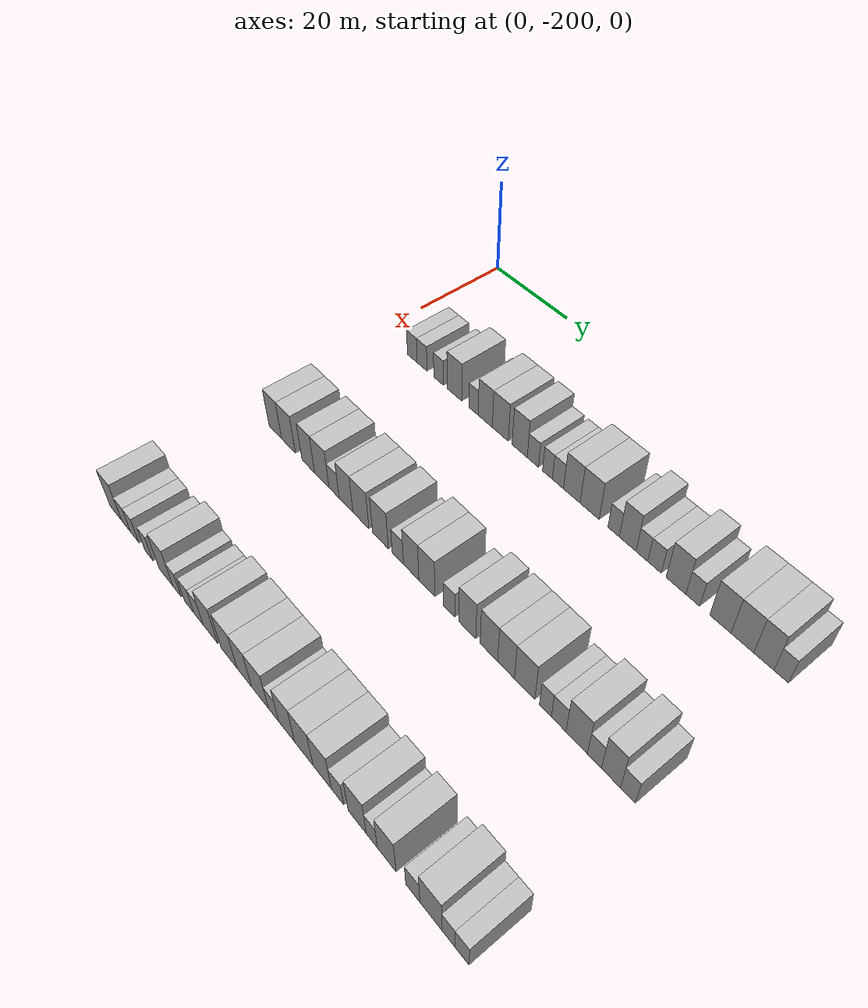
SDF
<sdf version="1.6">
 <world name="default">
  <model name="building_24">
   <static>1</static>
   <pose>25.0000 -189.9598 0 0.000000 0.000000 0.000000</pose>
   <link name="link">
    <pose>0 0 3.00 0 0 0</pose>
    <collision name="collision"><geometry><box><size>10.0000 2.9327 6.0000</size></box></geometry></collision>
    <visual name="visual">
     <cast_shadows>0</cast_shadows>
     <geometry><box><size>10.0000 2.9327 6.0000</size></box></geometry>
     <material>
      <script>
       <uri>model://HANNAS_wall/materials/scripts</uri>
       <uri>model://HANNAS_wall/materials/textures</uri>
       <name>vrc/HANNAS_wall</name>
      </script>
     </material>
    </visual>
   </link>
  </model>
  <model name="building_25">
   <static>1</static>
   <pose>25.0000 -187.0314 0 0.000000 0.000000 0.000000</pose>
   <link name="link">
    <pose>0 0 3.00 0 0 0</pose>
    <collision name="collision"><geometry><box><size>10.0000 2.9241 6.0000</size></box></geometry></collision>
    <visual name="visual">
     <cast_shadows>0</cast_shadows>
     <geometry><box><size>10.0000 2.9241 6.0000</size></box></geometry>
     <material>
      <script>
       <uri>model://HANNAS_wall/materials/scripts</uri>
       <uri>model://HANNAS_wall/materials/textures</uri>
       <name>vrc/HANNAS_wall</name>
      </script>
     </material>
    </visual>
   </link>
  </model>
  <model name="building_26">
   <static>1</static>
   <pose>25.0000 -182.1606 0 0.000000 0.000000 0.000000</pose>
   <link name="link">
    <pose>0 0 3.00 0 0 0</pose>
    <collision name="collision"><geometry><box><size>10.0000 2.8176 6.0000</size></box></geometry></collision>
    <visual name="visual">
     <cast_shadows>0</cast_shadows>
     <geometry><box><size>10.0000 2.8176 6.0000</size></box></geometry>
     <material>
      <script>
       <uri>model://HANNAS_wall/materials/scripts</uri>
       <uri>model://HANNAS_wall/materials/textures</uri>
       <name>vrc/HANNAS_wall</name>
      </script>
     </material>
    </visual>
   </link>
  </model>
  <model name="building_27">
   <static>1</static>
   <pose>25.0000 -177.6639 0 0.000000 0.000000 0.000000</pose>
   <link name="link">
    <pose>0 0 4.50 0 0 0</pose>
    <collision name="collision"><geometry><box><size>10.0000 4.1757 9.0000</size></box></geometry></collision>
    <visual name="visual">
     <cast_shadows>0</cast_shadows>
     <geometry><box><size>10.0000 4.1757 9.0000</size></box></geometry>
     <material>
      <script>
       <uri>model://HANNAS_wall/materials/scripts</uri>
       <uri>model://HANNAS_wall/materials/textures</uri>
       <name>vrc/HANNAS_wall</name>
      </script>
     </material>
    </visual>
   </link>
  </model>
  <model name="building_28">
   <static>1</static>
   <pose>25.0000 -172.3150 0 0.000000 0.000000 0.000000</pose>
   <link name="link">
    <pose>0 0 3.00 0 0 0</pose>
    <collision name="collision"><geometry><box><size>10.0000 2.5220 6.0000</size></box></geometry></collision>
    <visual name="visual">
     <cast_shadows>0</cast_shadows>
     <geometry><box><size>10.0000 2.5220 6.0000</size></box></geometry>
     <material>
      <script>
       <uri>model://HANNAS_wall/materials/scripts</uri>
       <uri>model://HANNAS_wall/materials/textures</uri>
       <name>vrc/HANNAS_wall</name>
      </script>
     </material>
    </visual>
   </link>
  </model>
  <model name="building_29">
   <static>1</static>
   <pose>25.0000 -169.1305 0 0.000000 0.000000 0.000000</pose>
   <link name="link">
    <pose>0 0 4.50 0 0 0</pose>
    <collision name="collision"><geometry><box><size>10.0000 3.8471 9.0000</size></box></geometry></collision>
    <visual name="visual">
     <cast_shadows>0</cast_shadows>
     <geometry><box><size>10.0000 3.8471 9.0000</size></box></geometry>
     <material>
      <script>
       <uri>model://HANNAS_wall/materials/scripts</uri>
       <uri>model://HANNAS_wall/materials/textures</uri>
       <name>vrc/HANNAS_wall</name>
      </script>
     </material>
    </visual>
   </link>
  </model>
  <model name="building_30">
   <static>1</static>
   <pose>25.0000 -165.1003 0 0.000000 0.000000 0.000000</pose>
   <link name="link">
    <pose>0 0 4.50 0 0 0</pose>
    <collision name="collision"><geometry><box><size>10.0000 4.2134 9.0000</size></box></geometry></collision>
    <visual name="visual">
     <cast_shadows>0</cast_shadows>
     <geometry><box><size>10.0000 4.2134 9.0000</size></box></geometry>
     <material>
      <script>
       <uri>model://HANNAS_wall/materials/scripts</uri>
       <uri>model://HANNAS_wall/materials/textures</uri>
       <name>vrc/HANNAS_wall</name>
      </script>
     </material>
    </visual>
   </link>
  </model>
  <model name="building_31">
   <static>1</static>
   <pose>25.0000 -160.0401 0 0.000000 0.000000 0.000000</pose>
   <link name="link">
    <pose>0 0 4.50 0 0 0</pose>
    <collision name="collision"><geometry><box><size>10.0000 3.9069 9.0000</size></box></geometry></collision>
    <visual name="visual">
     <cast_shadows>0</cast_shadows>
     <geometry><box><size>10.0000 3.9069 9.0000</size></box></geometry>
     <material>
      <script>
       <uri>model://HANNAS_wall/materials/scripts</uri>
       <uri>model://HANNAS_wall/materials/textures</uri>
       <name>vrc/HANNAS_wall</name>
      </script>
     </material>
    </visual>
   </link>
  </model>
  <model name="building_32">
   <static>1</static>
   <pose>25.0000 -156.6696 0 0.000000 0.000000 0.000000</pose>
   <link name="link">
    <pose>0 0 3.00 0 0 0</pose>
    <collision name="collision"><geometry><box><size>10.0000 2.8342 6.0000</size></box></geometry></collision>
    <visual name="visual">
     <cast_shadows>0</cast_shadows>
     <geometry><box><size>10.0000 2.8342 6.0000</size></box></geometry>
     <material>
      <script>
       <uri>model://HANNAS_wall/materials/scripts</uri>
       <uri>model://HANNAS_wall/materials/textures</uri>
       <name>vrc/HANNAS_wall</name>
      </script>
     </material>
    </visual>
   </link>
  </model>
  <model name="building_33">
   <static>1</static>
   <pose>25.0000 -153.0370 0 0.000000 0.000000 0.000000</pose>
   <link name="link">
    <pose>0 0 3.00 0 0 0</pose>
    <collision name="collision"><geometry><box><size>10.0000 2.4311 6.0000</size></box></geometry></collision>
    <visual name="visual">
     <cast_shadows>0</cast_shadows>
     <geometry><box><size>10.0000 2.4311 6.0000</size></box></geometry>
     <material>
      <script>
       <uri>model://HANNAS_wall/materials/scripts</uri>
       <uri>model://HANNAS_wall/materials/textures</uri>
       <name>vrc/HANNAS_wall</name>
      </script>
     </material>
    </visual>
   </link>
  </model>
  <model name="building_34">
   <static>1</static>
   <pose>25.0000 -150.4650 0 0.000000 0.000000 0.000000</pose>
   <link name="link">
    <pose>0 0 3.00 0 0 0</pose>
    <collision name="collision"><geometry><box><size>10.0000 2.7129 6.0000</size></box></geometry></collision>
    <visual name="visual">
     <cast_shadows>0</cast_shadows>
     <geometry><box><size>10.0000 2.7129 6.0000</size></box></geometry>
     <material>
      <script>
       <uri>model://HANNAS_wall/materials/scripts</uri>
       <uri>model://HANNAS_wall/materials/textures</uri>
       <name>vrc/HANNAS_wall</name>
      </script>
     </material>
    </visual>
   </link>
  </model>
  <model name="building_35">
   <static>1</static>
   <pose>25.0000 -147.1252 0 0.000000 0.000000 0.000000</pose>
   <link name="link">
    <pose>0 0 4.50 0 0 0</pose>
    <collision name="collision"><geometry><box><size>10.0000 3.9666 9.0000</size></box></geometry></collision>
    <visual name="visual">
     <cast_shadows>0</cast_shadows>
     <geometry><box><size>10.0000 3.9666 9.0000</size></box></geometry>
     <material>
      <script>
       <uri>model://HANNAS_wall/materials/scripts</uri>
       <uri>model://HANNAS_wall/materials/textures</uri>
       <name>vrc/HANNAS_wall</name>
      </script>
     </material>
    </visual>
   </link>
  </model>
  <model name="building_36">
   <static>1</static>
   <pose>25.0000 -142.9128 0 0.000000 0.000000 0.000000</pose>
   <link name="link">
    <pose>0 0 4.50 0 0 0</pose>
    <collision name="collision"><geometry><box><size>10.0000 4.4582 9.0000</size></box></geometry></collision>
    <visual name="visual">
     <cast_shadows>0</cast_shadows>
     <geometry><box><size>10.0000 4.4582 9.0000</size></box></geometry>
     <material>
      <script>
       <uri>model://HANNAS_wall/materials/scripts</uri>
       <uri>model://HANNAS_wall/materials/textures</uri>
       <name>vrc/HANNAS_wall</name>
      </script>
     </material>
    </visual>
   </link>
  </model>
  <model name="building_37">
   <static>1</static>
   <pose>25.0000 -137.3986 0 0.000000 0.000000 0.000000</pose>
   <link name="link">
    <pose>0 0 3.00 0 0 0</pose>
    <collision name="collision"><geometry><box><size>10.0000 2.5701 6.0000</size></box></geometry></collision>
    <visual name="visual">
     <cast_shadows>0</cast_shadows>
     <geometry><box><size>10.0000 2.5701 6.0000</size></box></geometry>
     <material>
      <script>
       <uri>model://HANNAS_wall/materials/scripts</uri>
       <uri>model://HANNAS_wall/materials/textures</uri>
       <name>vrc/HANNAS_wall</name>
      </script>
     </material>
    </visual>
   </link>
  </model>
  <model name="building_38">
   <static>1</static>
   <pose>25.0000 -134.2662 0 0.000000 0.000000 0.000000</pose>
   <link name="link">
    <pose>0 0 4.50 0 0 0</pose>
    <collision name="collision"><geometry><box><size>10.0000 3.6948 9.0000</size></box></geometry></collision>
    <visual name="visual">
     <cast_shadows>0</cast_shadows>
     <geometry><box><size>10.0000 3.6948 9.0000</size></box></geometry>
     <material>
      <script>
       <uri>model://HANNAS_wall/materials/scripts</uri>
       <uri>model://HANNAS_wall/materials/textures</uri>
       <name>vrc/HANNAS_wall</name>
      </script>
     </material>
    </visual>
   </link>
  </model>
  <model name="building_39">
   <static>1</static>
   <pose>25.0000 -131.1527 0 0.000000 0.000000 0.000000</pose>
   <link name="link">
    <pose>0 0 3.00 0 0 0</pose>
    <collision name="collision"><geometry><box><size>10.0000 2.5321 6.0000</size></box></geometry></collision>
    <visual name="visual">
     <cast_shadows>0</cast_shadows>
     <geometry><box><size>10.0000 2.5321 6.0000</size></box></geometry>
     <material>
      <script>
       <uri>model://HANNAS_wall/materials/scripts</uri>
       <uri>model://HANNAS_wall/materials/textures</uri>
       <name>vrc/HANNAS_wall</name>
      </script>
     </material>
    </visual>
   </link>
  </model>
  <model name="building_40">
   <static>1</static>
   <pose>25.0000 -128.4252 0 0.000000 0.000000 0.000000</pose>
   <link name="link">
    <pose>0 0 3.00 0 0 0</pose>
    <collision name="collision"><geometry><box><size>10.0000 2.9230 6.0000</size></box></geometry></collision>
    <visual name="visual">
     <cast_shadows>0</cast_shadows>
     <geometry><box><size>10.0000 2.9230 6.0000</size></box></geometry>
     <material>
      <script>
       <uri>model://HANNAS_wall/materials/scripts</uri>
       <uri>model://HANNAS_wall/materials/textures</uri>
       <name>vrc/HANNAS_wall</name>
      </script>
     </material>
    </visual>
   </link>
  </model>
  <model name="building_41">
   <static>1</static>
   <pose>25.0000 -123.9080 0 0.000000 0.000000 0.000000</pose>
   <link name="link">
    <pose>0 0 4.50 0 0 0</pose>
    <collision name="collision"><geometry><box><size>10.0000 4.1114 9.0000</size></box></geometry></collision>
    <visual name="visual">
     <cast_shadows>0</cast_shadows>
     <geometry><box><size>10.0000 4.1114 9.0000</size></box></geometry>
     <material>
      <script>
       <uri>model://HANNAS_wall/materials/scripts</uri>
       <uri>model://HANNAS_wall/materials/textures</uri>
       <name>vrc/HANNAS_wall</name>
      </script>
     </material>
    </visual>
   </link>
  </model>
  <model name="building_42">
   <static>1</static>
   <pose>25.0000 -120.4333 0 0.000000 0.000000 0.000000</pose>
   <link name="link">
    <pose>0 0 3.00 0 0 0</pose>
    <collision name="collision"><geometry><box><size>10.0000 2.8381 6.0000</size></box></geometry></collision>
    <visual name="visual">
     <cast_shadows>0</cast_shadows>
     <geometry><box><size>10.0000 2.8381 6.0000</size></box></geometry>
     <material>
      <script>
       <uri>model://HANNAS_wall/materials/scripts</uri>
       <uri>model://HANNAS_wall/materials/textures</uri>
       <name>vrc/HANNAS_wall</name>
      </script>
     </material>
    </visual>
   </link>
  </model>
  <model name="building_43">
   <static>1</static>
   <pose>25.0000 -114.9299 0 0.000000 0.000000 0.000000</pose>
   <link name="link">
    <pose>0 0 4.50 0 0 0</pose>
    <collision name="collision"><geometry><box><size>10.0000 4.1688 9.0000</size></box></geometry></collision>
    <visual name="visual">
     <cast_shadows>0</cast_shadows>
     <geometry><box><size>10.0000 4.1688 9.0000</size></box></geometry>
     <material>
      <script>
       <uri>model://HANNAS_wall/materials/scripts</uri>
       <uri>model://HANNAS_wall/materials/textures</uri>
       <name>vrc/HANNAS_wall</name>
      </script>
     </material>
    </visual>
   </link>
  </model>
  <model name="building_44">
   <static>1</static>
   <pose>25.0000 -110.6669 0 0.000000 0.000000 0.000000</pose>
   <link name="link">
    <pose>0 0 4.50 0 0 0</pose>
    <collision name="collision"><geometry><box><size>10.0000 4.3571 9.0000</size></box></geometry></collision>
    <visual name="visual">
     <cast_shadows>0</cast_shadows>
     <geometry><box><size>10.0000 4.3571 9.0000</size></box></geometry>
     <material>
      <script>
       <uri>model://HANNAS_wall/materials/scripts</uri>
       <uri>model://HANNAS_wall/materials/textures</uri>
       <name>vrc/HANNAS_wall</name>
      </script>
     </material>
    </visual>
   </link>
  </model>
  <model name="building_45">
   <static>1</static>
   <pose>25.0000 -106.6091 0 0.000000 0.000000 0.000000</pose>
   <link name="link">
    <pose>0 0 4.50 0 0 0</pose>
    <collision name="collision"><geometry><box><size>10.0000 3.7584 9.0000</size></box></geometry></collision>
    <visual name="visual">
     <cast_shadows>0</cast_shadows>
     <geometry><box><size>10.0000 3.7584 9.0000</size></box></geometry>
     <material>
      <script>
       <uri>model://HANNAS_wall/materials/scripts</uri>
       <uri>model://HANNAS_wall/materials/textures</uri>
       <name>vrc/HANNAS_wall</name>
      </script>
     </material>
    </visual>
   </link>
  </model>
  <model name="building_46">
   <static>1</static>
   <pose>25.0000 -103.3886 0 0.000000 0.000000 0.000000</pose>
   <link name="link">
    <pose>0 0 3.00 0 0 0</pose>
    <collision name="collision"><geometry><box><size>10.0000 2.6826 6.0000</size></box></geometry></collision>
    <visual name="visual">
     <cast_shadows>0</cast_shadows>
     <geometry><box><size>10.0000 2.6826 6.0000</size></box></geometry>
     <material>
      <script>
       <uri>model://HANNAS_wall/materials/scripts</uri>
       <uri>model://HANNAS_wall/materials/textures</uri>
       <name>vrc/HANNAS_wall</name>
      </script>
     </material>
    </visual>
   </link>
  </model>
  <model name="building_172">
   <static>1</static>
   <pose>55.0000 -190.2569 0 0.000000 0.000000 0.000000</pose>
   <link name="link">
    <pose>0 0 4.50 0 0 0</pose>
    <collision name="collision"><geometry><box><size>10.0000 3.9607 9.0000</size></box></geometry></collision>
    <visual name="visual">
     <cast_shadows>0</cast_shadows>
     <geometry><box><size>10.0000 3.9607 9.0000</size></box></geometry>
     <material>
      <script>
       <uri>model://HANNAS_wall/materials/scripts</uri>
       <uri>model://HANNAS_wall/materials/textures</uri>
       <name>vrc/HANNAS_wall</name>
      </script>
     </material>
    </visual>
   </link>
  </model>
  <model name="building_173">
   <static>1</static>
   <pose>55.0000 -186.1479 0 0.000000 0.000000 0.000000</pose>
   <link name="link">
    <pose>0 0 4.50 0 0 0</pose>
    <collision name="collision"><geometry><box><size>10.0000 4.2573 9.0000</size></box></geometry></collision>
    <visual name="visual">
     <cast_shadows>0</cast_shadows>
     <geometry><box><size>10.0000 4.2573 9.0000</size></box></geometry>
     <material>
      <script>
       <uri>model://HANNAS_wall/materials/scripts</uri>
       <uri>model://HANNAS_wall/materials/textures</uri>
       <name>vrc/HANNAS_wall</name>
      </script>
     </material>
    </visual>
   </link>
  </model>
  <model name="building_174">
   <static>1</static>
   <pose>55.0000 -180.1241 0 0.000000 0.000000 0.000000</pose>
   <link name="link">
    <pose>0 0 4.50 0 0 0</pose>
    <collision name="collision"><geometry><box><size>10.0000 3.7902 9.0000</size></box></geometry></collision>
    <visual name="visual">
     <cast_shadows>0</cast_shadows>
     <geometry><box><size>10.0000 3.7902 9.0000</size></box></geometry>
     <material>
      <script>
       <uri>model://HANNAS_wall/materials/scripts</uri>
       <uri>model://HANNAS_wall/materials/textures</uri>
       <name>vrc/HANNAS_wall</name>
      </script>
     </material>
    </visual>
   </link>
  </model>
  <model name="building_175">
   <static>1</static>
   <pose>55.0000 -176.1196 0 0.000000 0.000000 0.000000</pose>
   <link name="link">
    <pose>0 0 4.50 0 0 0</pose>
    <collision name="collision"><geometry><box><size>10.0000 4.2188 9.0000</size></box></geometry></collision>
    <visual name="visual">
     <cast_shadows>0</cast_shadows>
     <geometry><box><size>10.0000 4.2188 9.0000</size></box></geometry>
     <material>
      <script>
       <uri>model://HANNAS_wall/materials/scripts</uri>
       <uri>model://HANNAS_wall/materials/textures</uri>
       <name>vrc/HANNAS_wall</name>
      </script>
     </material>
    </visual>
   </link>
  </model>
  <model name="building_176">
   <static>1</static>
   <pose>55.0000 -172.5550 0 0.000000 0.000000 0.000000</pose>
   <link name="link">
    <pose>0 0 3.00 0 0 0</pose>
    <collision name="collision"><geometry><box><size>10.0000 2.9104 6.0000</size></box></geometry></collision>
    <visual name="visual">
     <cast_shadows>0</cast_shadows>
     <geometry><box><size>10.0000 2.9104 6.0000</size></box></geometry>
     <material>
      <script>
       <uri>model://HANNAS_wall/materials/scripts</uri>
       <uri>model://HANNAS_wall/materials/textures</uri>
       <name>vrc/HANNAS_wall</name>
      </script>
     </material>
    </visual>
   </link>
  </model>
  <model name="building_177">
   <static>1</static>
   <pose>55.0000 -169.1664 0 0.000000 0.000000 0.000000</pose>
   <link name="link">
    <pose>0 0 4.50 0 0 0</pose>
    <collision name="collision"><geometry><box><size>10.0000 3.8669 9.0000</size></box></geometry></collision>
    <visual name="visual">
     <cast_shadows>0</cast_shadows>
     <geometry><box><size>10.0000 3.8669 9.0000</size></box></geometry>
     <material>
      <script>
       <uri>model://HANNAS_wall/materials/scripts</uri>
       <uri>model://HANNAS_wall/materials/textures</uri>
       <name>vrc/HANNAS_wall</name>
      </script>
     </material>
    </visual>
   </link>
  </model>
  <model name="building_178">
   <static>1</static>
   <pose>55.0000 -165.0434 0 0.000000 0.000000 0.000000</pose>
   <link name="link">
    <pose>0 0 4.50 0 0 0</pose>
    <collision name="collision"><geometry><box><size>10.0000 4.3790 9.0000</size></box></geometry></collision>
    <visual name="visual">
     <cast_shadows>0</cast_shadows>
     <geometry><box><size>10.0000 4.3790 9.0000</size></box></geometry>
     <material>
      <script>
       <uri>model://HANNAS_wall/materials/scripts</uri>
       <uri>model://HANNAS_wall/materials/textures</uri>
       <name>vrc/HANNAS_wall</name>
      </script>
     </material>
    </visual>
   </link>
  </model>
  <model name="building_179">
   <static>1</static>
   <pose>55.0000 -159.7530 0 0.000000 0.000000 0.000000</pose>
   <link name="link">
    <pose>0 0 4.50 0 0 0</pose>
    <collision name="collision"><geometry><box><size>10.0000 4.2018 9.0000</size></box></geometry></collision>
    <visual name="visual">
     <cast_shadows>0</cast_shadows>
     <geometry><box><size>10.0000 4.2018 9.0000</size></box></geometry>
     <material>
      <script>
       <uri>model://HANNAS_wall/materials/scripts</uri>
       <uri>model://HANNAS_wall/materials/textures</uri>
       <name>vrc/HANNAS_wall</name>
      </script>
     </material>
    </visual>
   </link>
  </model>
  <model name="building_180">
   <static>1</static>
   <pose>55.0000 -155.1799 0 0.000000 0.000000 0.000000</pose>
   <link name="link">
    <pose>0 0 3.00 0 0 0</pose>
    <collision name="collision"><geometry><box><size>10.0000 2.9445 6.0000</size></box></geometry></collision>
    <visual name="visual">
     <cast_shadows>0</cast_shadows>
     <geometry><box><size>10.0000 2.9445 6.0000</size></box></geometry>
     <material>
      <script>
       <uri>model://HANNAS_wall/materials/scripts</uri>
       <uri>model://HANNAS_wall/materials/textures</uri>
       <name>vrc/HANNAS_wall</name>
      </script>
     </material>
    </visual>
   </link>
  </model>
  <model name="building_181">
   <static>1</static>
   <pose>55.0000 -151.7801 0 0.000000 0.000000 0.000000</pose>
   <link name="link">
    <pose>0 0 4.50 0 0 0</pose>
    <collision name="collision"><geometry><box><size>10.0000 3.8550 9.0000</size></box></geometry></collision>
    <visual name="visual">
     <cast_shadows>0</cast_shadows>
     <geometry><box><size>10.0000 3.8550 9.0000</size></box></geometry>
     <material>
      <script>
       <uri>model://HANNAS_wall/materials/scripts</uri>
       <uri>model://HANNAS_wall/materials/textures</uri>
       <name>vrc/HANNAS_wall</name>
      </script>
     </material>
    </visual>
   </link>
  </model>
  <model name="building_182">
   <static>1</static>
   <pose>55.0000 -147.8596 0 0.000000 0.000000 0.000000</pose>
   <link name="link">
    <pose>0 0 4.50 0 0 0</pose>
    <collision name="collision"><geometry><box><size>10.0000 3.9860 9.0000</size></box></geometry></collision>
    <visual name="visual">
     <cast_shadows>0</cast_shadows>
     <geometry><box><size>10.0000 3.9860 9.0000</size></box></geometry>
     <material>
      <script>
       <uri>model://HANNAS_wall/materials/scripts</uri>
       <uri>model://HANNAS_wall/materials/textures</uri>
       <name>vrc/HANNAS_wall</name>
      </script>
     </material>
    </visual>
   </link>
  </model>
  <model name="building_183">
   <static>1</static>
   <pose>55.0000 -142.4918 0 0.000000 0.000000 0.000000</pose>
   <link name="link">
    <pose>0 0 3.00 0 0 0</pose>
    <collision name="collision"><geometry><box><size>10.0000 2.7497 6.0000</size></box></geometry></collision>
    <visual name="visual">
     <cast_shadows>0</cast_shadows>
     <geometry><box><size>10.0000 2.7497 6.0000</size></box></geometry>
     <material>
      <script>
       <uri>model://HANNAS_wall/materials/scripts</uri>
       <uri>model://HANNAS_wall/materials/textures</uri>
       <name>vrc/HANNAS_wall</name>
      </script>
     </material>
    </visual>
   </link>
  </model>
  <model name="building_184">
   <static>1</static>
   <pose>55.0000 -138.1623 0 0.000000 0.000000 0.000000</pose>
   <link name="link">
    <pose>0 0 4.50 0 0 0</pose>
    <collision name="collision"><geometry><box><size>10.0000 3.9093 9.0000</size></box></geometry></collision>
    <visual name="visual">
     <cast_shadows>0</cast_shadows>
     <geometry><box><size>10.0000 3.9093 9.0000</size></box></geometry>
     <material>
      <script>
       <uri>model://HANNAS_wall/materials/scripts</uri>
       <uri>model://HANNAS_wall/materials/textures</uri>
       <name>vrc/HANNAS_wall</name>
      </script>
     </material>
    </visual>
   </link>
  </model>
  <model name="building_185">
   <static>1</static>
   <pose>55.0000 -133.2406 0 0.000000 0.000000 0.000000</pose>
   <link name="link">
    <pose>0 0 4.50 0 0 0</pose>
    <collision name="collision"><geometry><box><size>10.0000 3.9342 9.0000</size></box></geometry></collision>
    <visual name="visual">
     <cast_shadows>0</cast_shadows>
     <geometry><box><size>10.0000 3.9342 9.0000</size></box></geometry>
     <material>
      <script>
       <uri>model://HANNAS_wall/materials/scripts</uri>
       <uri>model://HANNAS_wall/materials/textures</uri>
       <name>vrc/HANNAS_wall</name>
      </script>
     </material>
    </visual>
   </link>
  </model>
  <model name="building_186">
   <static>1</static>
   <pose>55.0000 -129.4255 0 0.000000 0.000000 0.000000</pose>
   <link name="link">
    <pose>0 0 4.50 0 0 0</pose>
    <collision name="collision"><geometry><box><size>10.0000 3.6958 9.0000</size></box></geometry></collision>
    <visual name="visual">
     <cast_shadows>0</cast_shadows>
     <geometry><box><size>10.0000 3.6958 9.0000</size></box></geometry>
     <material>
      <script>
       <uri>model://HANNAS_wall/materials/scripts</uri>
       <uri>model://HANNAS_wall/materials/textures</uri>
       <name>vrc/HANNAS_wall</name>
      </script>
     </material>
    </visual>
   </link>
  </model>
  <model name="building_187">
   <static>1</static>
   <pose>55.0000 -125.4111 0 0.000000 0.000000 0.000000</pose>
   <link name="link">
    <pose>0 0 4.50 0 0 0</pose>
    <collision name="collision"><geometry><box><size>10.0000 4.3331 9.0000</size></box></geometry></collision>
    <visual name="visual">
     <cast_shadows>0</cast_shadows>
     <geometry><box><size>10.0000 4.3331 9.0000</size></box></geometry>
     <material>
      <script>
       <uri>model://HANNAS_wall/materials/scripts</uri>
       <uri>model://HANNAS_wall/materials/textures</uri>
       <name>vrc/HANNAS_wall</name>
      </script>
     </material>
    </visual>
   </link>
  </model>
  <model name="building_188">
   <static>1</static>
   <pose>55.0000 -121.0119 0 0.000000 0.000000 0.000000</pose>
   <link name="link">
    <pose>0 0 3.00 0 0 0</pose>
    <collision name="collision"><geometry><box><size>10.0000 2.4654 6.0000</size></box></geometry></collision>
    <visual name="visual">
     <cast_shadows>0</cast_shadows>
     <geometry><box><size>10.0000 2.4654 6.0000</size></box></geometry>
     <material>
      <script>
       <uri>model://HANNAS_wall/materials/scripts</uri>
       <uri>model://HANNAS_wall/materials/textures</uri>
       <name>vrc/HANNAS_wall</name>
      </script>
     </material>
    </visual>
   </link>
  </model>
  <model name="building_189">
   <static>1</static>
   <pose>55.0000 -118.2909 0 0.000000 0.000000 0.000000</pose>
   <link name="link">
    <pose>0 0 3.00 0 0 0</pose>
    <collision name="collision"><geometry><box><size>10.0000 2.9765 6.0000</size></box></geometry></collision>
    <visual name="visual">
     <cast_shadows>0</cast_shadows>
     <geometry><box><size>10.0000 2.9765 6.0000</size></box></geometry>
     <material>
      <script>
       <uri>model://HANNAS_wall/materials/scripts</uri>
       <uri>model://HANNAS_wall/materials/textures</uri>
       <name>vrc/HANNAS_wall</name>
      </script>
     </material>
    </visual>
   </link>
  </model>
  <model name="building_190">
   <static>1</static>
   <pose>55.0000 -114.6771 0 0.000000 0.000000 0.000000</pose>
   <link name="link">
    <pose>0 0 4.50 0 0 0</pose>
    <collision name="collision"><geometry><box><size>10.0000 4.2510 9.0000</size></box></geometry></collision>
    <visual name="visual">
     <cast_shadows>0</cast_shadows>
     <geometry><box><size>10.0000 4.2510 9.0000</size></box></geometry>
     <material>
      <script>
       <uri>model://HANNAS_wall/materials/scripts</uri>
       <uri>model://HANNAS_wall/materials/textures</uri>
       <name>vrc/HANNAS_wall</name>
      </script>
     </material>
    </visual>
   </link>
  </model>
  <model name="building_191">
   <static>1</static>
   <pose>55.0000 -111.1859 0 0.000000 0.000000 0.000000</pose>
   <link name="link">
    <pose>0 0 3.00 0 0 0</pose>
    <collision name="collision"><geometry><box><size>10.0000 2.7314 6.0000</size></box></geometry></collision>
    <visual name="visual">
     <cast_shadows>0</cast_shadows>
     <geometry><box><size>10.0000 2.7314 6.0000</size></box></geometry>
     <material>
      <script>
       <uri>model://HANNAS_wall/materials/scripts</uri>
       <uri>model://HANNAS_wall/materials/textures</uri>
       <name>vrc/HANNAS_wall</name>
      </script>
     </material>
    </visual>
   </link>
  </model>
  <model name="building_192">
   <static>1</static>
   <pose>55.0000 -108.0195 0 0.000000 0.000000 0.000000</pose>
   <link name="link">
    <pose>0 0 4.50 0 0 0</pose>
    <collision name="collision"><geometry><box><size>10.0000 3.6015 9.0000</size></box></geometry></collision>
    <visual name="visual">
     <cast_shadows>0</cast_shadows>
     <geometry><box><size>10.0000 3.6015 9.0000</size></box></geometry>
     <material>
      <script>
       <uri>model://HANNAS_wall/materials/scripts</uri>
       <uri>model://HANNAS_wall/materials/textures</uri>
       <name>vrc/HANNAS_wall</name>
      </script>
     </material>
    </visual>
   </link>
  </model>
  <model name="building_193">
   <static>1</static>
   <pose>55.0000 -104.8228 0 0.000000 0.000000 0.000000</pose>
   <link name="link">
    <pose>0 0 3.00 0 0 0</pose>
    <collision name="collision"><geometry><box><size>10.0000 2.7918 6.0000</size></box></geometry></collision>
    <visual name="visual">
     <cast_shadows>0</cast_shadows>
     <geometry><box><size>10.0000 2.7918 6.0000</size></box></geometry>
     <material>
      <script>
       <uri>model://HANNAS_wall/materials/scripts</uri>
       <uri>model://HANNAS_wall/materials/textures</uri>
       <name>vrc/HANNAS_wall</name>
      </script>
     </material>
    </visual>
   </link>
  </model>
  <model name="building_296">
   <static>1</static>
   <pose>85.0000 -191.5110 0 0.000000 0.000000 0.000000</pose>
   <link name="link">
    <pose>0 0 4.50 0 0 0</pose>
    <collision name="collision"><geometry><box><size>10.0000 4.0907 9.0000</size></box></geometry></collision>
    <visual name="visual">
     <cast_shadows>0</cast_shadows>
     <geometry><box><size>10.0000 4.0907 9.0000</size></box></geometry>
     <material>
      <script>
       <uri>model://HANNAS_wall/materials/scripts</uri>
       <uri>model://HANNAS_wall/materials/textures</uri>
       <name>vrc/HANNAS_wall</name>
      </script>
     </material>
    </visual>
   </link>
  </model>
  <model name="building_297">
   <static>1</static>
   <pose>85.0000 -188.0162 0 0.000000 0.000000 0.000000</pose>
   <link name="link">
    <pose>0 0 3.00 0 0 0</pose>
    <collision name="collision"><geometry><box><size>10.0000 2.8988 6.0000</size></box></geometry></collision>
    <visual name="visual">
     <cast_shadows>0</cast_shadows>
     <geometry><box><size>10.0000 2.8988 6.0000</size></box></geometry>
     <material>
      <script>
       <uri>model://HANNAS_wall/materials/scripts</uri>
       <uri>model://HANNAS_wall/materials/textures</uri>
       <name>vrc/HANNAS_wall</name>
      </script>
     </material>
    </visual>
   </link>
  </model>
  <model name="building_298">
   <static>1</static>
   <pose>85.0000 -185.1714 0 0.000000 0.000000 0.000000</pose>
   <link name="link">
    <pose>0 0 3.00 0 0 0</pose>
    <collision name="collision"><geometry><box><size>10.0000 2.7909 6.0000</size></box></geometry></collision>
    <visual name="visual">
     <cast_shadows>0</cast_shadows>
     <geometry><box><size>10.0000 2.7909 6.0000</size></box></geometry>
     <material>
      <script>
       <uri>model://HANNAS_wall/materials/scripts</uri>
       <uri>model://HANNAS_wall/materials/textures</uri>
       <name>vrc/HANNAS_wall</name>
      </script>
     </material>
    </visual>
   </link>
  </model>
  <model name="building_299">
   <static>1</static>
   <pose>85.0000 -180.5018 0 0.000000 0.000000 0.000000</pose>
   <link name="link">
    <pose>0 0 3.00 0 0 0</pose>
    <collision name="collision"><geometry><box><size>10.0000 2.5483 6.0000</size></box></geometry></collision>
    <visual name="visual">
     <cast_shadows>0</cast_shadows>
     <geometry><box><size>10.0000 2.5483 6.0000</size></box></geometry>
     <material>
      <script>
       <uri>model://HANNAS_wall/materials/scripts</uri>
       <uri>model://HANNAS_wall/materials/textures</uri>
       <name>vrc/HANNAS_wall</name>
      </script>
     </material>
    </visual>
   </link>
  </model>
  <model name="building_300">
   <static>1</static>
   <pose>85.0000 -175.0952 0 0.000000 0.000000 0.000000</pose>
   <link name="link">
    <pose>0 0 4.50 0 0 0</pose>
    <collision name="collision"><geometry><box><size>10.0000 4.2650 9.0000</size></box></geometry></collision>
    <visual name="visual">
     <cast_shadows>0</cast_shadows>
     <geometry><box><size>10.0000 4.2650 9.0000</size></box></geometry>
     <material>
      <script>
       <uri>model://HANNAS_wall/materials/scripts</uri>
       <uri>model://HANNAS_wall/materials/textures</uri>
       <name>vrc/HANNAS_wall</name>
      </script>
     </material>
    </visual>
   </link>
  </model>
  <model name="building_301">
   <static>1</static>
   <pose>85.0000 -171.6937 0 0.000000 0.000000 0.000000</pose>
   <link name="link">
    <pose>0 0 3.00 0 0 0</pose>
    <collision name="collision"><geometry><box><size>10.0000 2.5380 6.0000</size></box></geometry></collision>
    <visual name="visual">
     <cast_shadows>0</cast_shadows>
     <geometry><box><size>10.0000 2.5380 6.0000</size></box></geometry>
     <material>
      <script>
       <uri>model://HANNAS_wall/materials/scripts</uri>
       <uri>model://HANNAS_wall/materials/textures</uri>
       <name>vrc/HANNAS_wall</name>
      </script>
     </material>
    </visual>
   </link>
  </model>
  <model name="building_302">
   <static>1</static>
   <pose>85.0000 -168.0575 0 0.000000 0.000000 0.000000</pose>
   <link name="link">
    <pose>0 0 3.00 0 0 0</pose>
    <collision name="collision"><geometry><box><size>10.0000 2.7343 6.0000</size></box></geometry></collision>
    <visual name="visual">
     <cast_shadows>0</cast_shadows>
     <geometry><box><size>10.0000 2.7343 6.0000</size></box></geometry>
     <material>
      <script>
       <uri>model://HANNAS_wall/materials/scripts</uri>
       <uri>model://HANNAS_wall/materials/textures</uri>
       <name>vrc/HANNAS_wall</name>
      </script>
     </material>
    </visual>
   </link>
  </model>
  <model name="building_303">
   <static>1</static>
   <pose>85.0000 -165.2807 0 0.000000 0.000000 0.000000</pose>
   <link name="link">
    <pose>0 0 3.00 0 0 0</pose>
    <collision name="collision"><geometry><box><size>10.0000 2.8194 6.0000</size></box></geometry></collision>
    <visual name="visual">
     <cast_shadows>0</cast_shadows>
     <geometry><box><size>10.0000 2.8194 6.0000</size></box></geometry>
     <material>
      <script>
       <uri>model://HANNAS_wall/materials/scripts</uri>
       <uri>model://HANNAS_wall/materials/textures</uri>
       <name>vrc/HANNAS_wall</name>
      </script>
     </material>
    </visual>
   </link>
  </model>
  <model name="building_304">
   <static>1</static>
   <pose>85.0000 -161.8330 0 0.000000 0.000000 0.000000</pose>
   <link name="link">
    <pose>0 0 4.50 0 0 0</pose>
    <collision name="collision"><geometry><box><size>10.0000 4.0759 9.0000</size></box></geometry></collision>
    <visual name="visual">
     <cast_shadows>0</cast_shadows>
     <geometry><box><size>10.0000 4.0759 9.0000</size></box></geometry>
     <material>
      <script>
       <uri>model://HANNAS_wall/materials/scripts</uri>
       <uri>model://HANNAS_wall/materials/textures</uri>
       <name>vrc/HANNAS_wall</name>
      </script>
     </material>
    </visual>
   </link>
  </model>
  <model name="building_305">
   <static>1</static>
   <pose>85.0000 -156.5627 0 0.000000 0.000000 0.000000</pose>
   <link name="link">
    <pose>0 0 4.50 0 0 0</pose>
    <collision name="collision"><geometry><box><size>10.0000 4.4648 9.0000</size></box></geometry></collision>
    <visual name="visual">
     <cast_shadows>0</cast_shadows>
     <geometry><box><size>10.0000 4.4648 9.0000</size></box></geometry>
     <material>
      <script>
       <uri>model://HANNAS_wall/materials/scripts</uri>
       <uri>model://HANNAS_wall/materials/textures</uri>
       <name>vrc/HANNAS_wall</name>
      </script>
     </material>
    </visual>
   </link>
  </model>
  <model name="building_306">
   <static>1</static>
   <pose>85.0000 -152.3675 0 0.000000 0.000000 0.000000</pose>
   <link name="link">
    <pose>0 0 4.50 0 0 0</pose>
    <collision name="collision"><geometry><box><size>10.0000 3.9254 9.0000</size></box></geometry></collision>
    <visual name="visual">
     <cast_shadows>0</cast_shadows>
     <geometry><box><size>10.0000 3.9254 9.0000</size></box></geometry>
     <material>
      <script>
       <uri>model://HANNAS_wall/materials/scripts</uri>
       <uri>model://HANNAS_wall/materials/textures</uri>
       <name>vrc/HANNAS_wall</name>
      </script>
     </material>
    </visual>
   </link>
  </model>
  <model name="building_307">
   <static>1</static>
   <pose>85.0000 -148.2041 0 0.000000 0.000000 0.000000</pose>
   <link name="link">
    <pose>0 0 4.50 0 0 0</pose>
    <collision name="collision"><geometry><box><size>10.0000 4.4015 9.0000</size></box></geometry></collision>
    <visual name="visual">
     <cast_shadows>0</cast_shadows>
     <geometry><box><size>10.0000 4.4015 9.0000</size></box></geometry>
     <material>
      <script>
       <uri>model://HANNAS_wall/materials/scripts</uri>
       <uri>model://HANNAS_wall/materials/textures</uri>
       <name>vrc/HANNAS_wall</name>
      </script>
     </material>
    </visual>
   </link>
  </model>
  <model name="building_308">
   <static>1</static>
   <pose>85.0000 -144.6810 0 0.000000 0.000000 0.000000</pose>
   <link name="link">
    <pose>0 0 3.00 0 0 0</pose>
    <collision name="collision"><geometry><box><size>10.0000 2.6445 6.0000</size></box></geometry></collision>
    <visual name="visual">
     <cast_shadows>0</cast_shadows>
     <geometry><box><size>10.0000 2.6445 6.0000</size></box></geometry>
     <material>
      <script>
       <uri>model://HANNAS_wall/materials/scripts</uri>
       <uri>model://HANNAS_wall/materials/textures</uri>
       <name>vrc/HANNAS_wall</name>
      </script>
     </material>
    </visual>
   </link>
  </model>
  <model name="building_309">
   <static>1</static>
   <pose>85.0000 -141.3612 0 0.000000 0.000000 0.000000</pose>
   <link name="link">
    <pose>0 0 4.50 0 0 0</pose>
    <collision name="collision"><geometry><box><size>10.0000 3.9951 9.0000</size></box></geometry></collision>
    <visual name="visual">
     <cast_shadows>0</cast_shadows>
     <geometry><box><size>10.0000 3.9951 9.0000</size></box></geometry>
     <material>
      <script>
       <uri>model://HANNAS_wall/materials/scripts</uri>
       <uri>model://HANNAS_wall/materials/textures</uri>
       <name>vrc/HANNAS_wall</name>
      </script>
     </material>
    </visual>
   </link>
  </model>
  <model name="building_310">
   <static>1</static>
   <pose>85.0000 -137.1340 0 0.000000 0.000000 0.000000</pose>
   <link name="link">
    <pose>0 0 4.50 0 0 0</pose>
    <collision name="collision"><geometry><box><size>10.0000 4.4594 9.0000</size></box></geometry></collision>
    <visual name="visual">
     <cast_shadows>0</cast_shadows>
     <geometry><box><size>10.0000 4.4594 9.0000</size></box></geometry>
     <material>
      <script>
       <uri>model://HANNAS_wall/materials/scripts</uri>
       <uri>model://HANNAS_wall/materials/textures</uri>
       <name>vrc/HANNAS_wall</name>
      </script>
     </material>
    </visual>
   </link>
  </model>
  <model name="building_311">
   <static>1</static>
   <pose>85.0000 -132.7516 0 0.000000 0.000000 0.000000</pose>
   <link name="link">
    <pose>0 0 4.50 0 0 0</pose>
    <collision name="collision"><geometry><box><size>10.0000 4.3053 9.0000</size></box></geometry></collision>
    <visual name="visual">
     <cast_shadows>0</cast_shadows>
     <geometry><box><size>10.0000 4.3053 9.0000</size></box></geometry>
     <material>
      <script>
       <uri>model://HANNAS_wall/materials/scripts</uri>
       <uri>model://HANNAS_wall/materials/textures</uri>
       <name>vrc/HANNAS_wall</name>
      </script>
     </material>
    </visual>
   </link>
  </model>
  <model name="building_312">
   <static>1</static>
   <pose>85.0000 -129.1859 0 0.000000 0.000000 0.000000</pose>
   <link name="link">
    <pose>0 0 3.00 0 0 0</pose>
    <collision name="collision"><geometry><box><size>10.0000 2.8262 6.0000</size></box></geometry></collision>
    <visual name="visual">
     <cast_shadows>0</cast_shadows>
     <geometry><box><size>10.0000 2.8262 6.0000</size></box></geometry>
     <material>
      <script>
       <uri>model://HANNAS_wall/materials/scripts</uri>
       <uri>model://HANNAS_wall/materials/textures</uri>
       <name>vrc/HANNAS_wall</name>
      </script>
     </material>
    </visual>
   </link>
  </model>
  <model name="building_313">
   <static>1</static>
   <pose>85.0000 -124.7534 0 0.000000 0.000000 0.000000</pose>
   <link name="link">
    <pose>0 0 4.50 0 0 0</pose>
    <collision name="collision"><geometry><box><size>10.0000 4.0388 9.0000</size></box></geometry></collision>
    <visual name="visual">
     <cast_shadows>0</cast_shadows>
     <geometry><box><size>10.0000 4.0388 9.0000</size></box></geometry>
     <material>
      <script>
       <uri>model://HANNAS_wall/materials/scripts</uri>
       <uri>model://HANNAS_wall/materials/textures</uri>
       <name>vrc/HANNAS_wall</name>
      </script>
     </material>
    </visual>
   </link>
  </model>
  <model name="building_314">
   <static>1</static>
   <pose>85.0000 -121.5302 0 0.000000 0.000000 0.000000</pose>
   <link name="link">
    <pose>0 0 3.00 0 0 0</pose>
    <collision name="collision"><geometry><box><size>10.0000 2.4078 6.0000</size></box></geometry></collision>
    <visual name="visual">
     <cast_shadows>0</cast_shadows>
     <geometry><box><size>10.0000 2.4078 6.0000</size></box></geometry>
     <material>
      <script>
       <uri>model://HANNAS_wall/materials/scripts</uri>
       <uri>model://HANNAS_wall/materials/textures</uri>
       <name>vrc/HANNAS_wall</name>
      </script>
     </material>
    </visual>
   </link>
  </model>
  <model name="building_315">
   <static>1</static>
   <pose>85.0000 -118.3374 0 0.000000 0.000000 0.000000</pose>
   <link name="link">
    <pose>0 0 4.50 0 0 0</pose>
    <collision name="collision"><geometry><box><size>10.0000 3.9777 9.0000</size></box></geometry></collision>
    <visual name="visual">
     <cast_shadows>0</cast_shadows>
     <geometry><box><size>10.0000 3.9777 9.0000</size></box></geometry>
     <material>
      <script>
       <uri>model://HANNAS_wall/materials/scripts</uri>
       <uri>model://HANNAS_wall/materials/textures</uri>
       <name>vrc/HANNAS_wall</name>
      </script>
     </material>
    </visual>
   </link>
  </model>
  <model name="building_316">
   <static>1</static>
   <pose>85.0000 -112.9153 0 0.000000 0.000000 0.000000</pose>
   <link name="link">
    <pose>0 0 3.00 0 0 0</pose>
    <collision name="collision"><geometry><box><size>10.0000 2.8666 6.0000</size></box></geometry></collision>
    <visual name="visual">
     <cast_shadows>0</cast_shadows>
     <geometry><box><size>10.0000 2.8666 6.0000</size></box></geometry>
     <material>
      <script>
       <uri>model://HANNAS_wall/materials/scripts</uri>
       <uri>model://HANNAS_wall/materials/textures</uri>
       <name>vrc/HANNAS_wall</name>
      </script>
     </material>
    </visual>
   </link>
  </model>
  <model name="building_317">
   <static>1</static>
   <pose>85.0000 -109.3077 0 0.000000 0.000000 0.000000</pose>
   <link name="link">
    <pose>0 0 4.50 0 0 0</pose>
    <collision name="collision"><geometry><box><size>10.0000 4.3486 9.0000</size></box></geometry></collision>
    <visual name="visual">
     <cast_shadows>0</cast_shadows>
     <geometry><box><size>10.0000 4.3486 9.0000</size></box></geometry>
     <material>
      <script>
       <uri>model://HANNAS_wall/materials/scripts</uri>
       <uri>model://HANNAS_wall/materials/textures</uri>
       <name>vrc/HANNAS_wall</name>
      </script>
     </material>
    </visual>
   </link>
  </model>
  <model name="building_318">
   <static>1</static>
   <pose>85.0000 -105.8707 0 0.000000 0.000000 0.000000</pose>
   <link name="link">
    <pose>0 0 3.00 0 0 0</pose>
    <collision name="collision"><geometry><box><size>10.0000 2.5254 6.0000</size></box></geometry></collision>
    <visual name="visual">
     <cast_shadows>0</cast_shadows>
     <geometry><box><size>10.0000 2.5254 6.0000</size></box></geometry>
     <material>
      <script>
       <uri>model://HANNAS_wall/materials/scripts</uri>
       <uri>model://HANNAS_wall/materials/textures</uri>
       <name>vrc/HANNAS_wall</name>
      </script>
     </material>
    </visual>
   </link>
  </model>
  <model name="building_319">
   <static>1</static>
   <pose>85.0000 -103.2838 0 0.000000 0.000000 0.000000</pose>
   <link name="link">
    <pose>0 0 3.00 0 0 0</pose>
    <collision name="collision"><geometry><box><size>10.0000 2.6485 6.0000</size></box></geometry></collision>
    <visual name="visual">
     <cast_shadows>0</cast_shadows>
     <geometry><box><size>10.0000 2.6485 6.0000</size></box></geometry>
     <material>
      <script>
       <uri>model://HANNAS_wall/materials/scripts</uri>
       <uri>model://HANNAS_wall/materials/textures</uri>
       <name>vrc/HANNAS_wall</name>
      </script>
     </material>
    </visual>
   </link>
  </model>
 </world>
</sdf>
